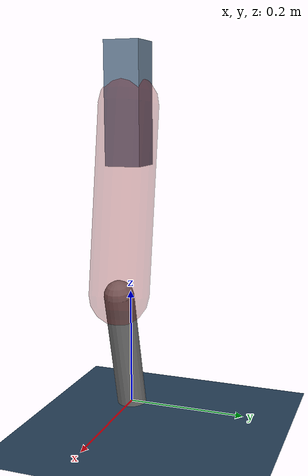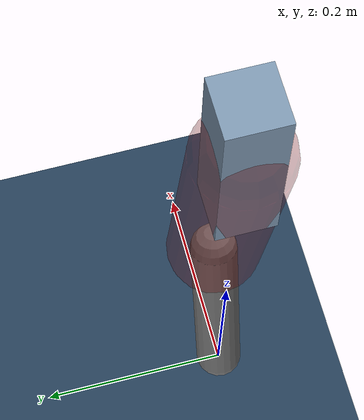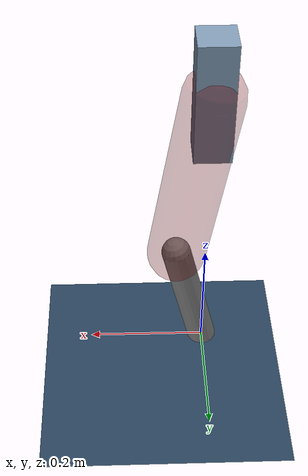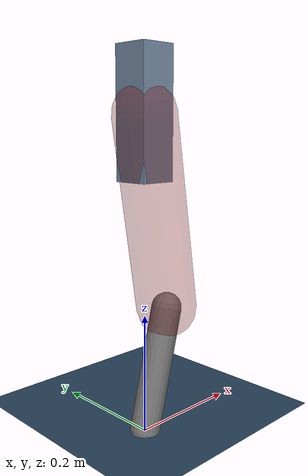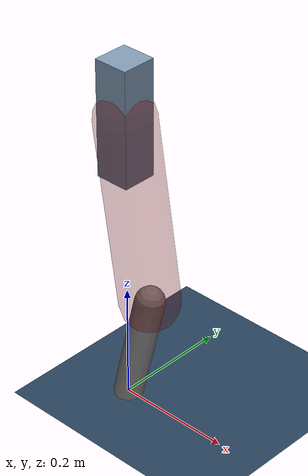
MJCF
<mujoco model="Hopper2D">
	<compiler inertiafromgeom="true" angle="radian" />
	<option timestep="0.001" integrator="implicit" cone="elliptic" solver="Newton" tolerance="1e-10" />

	<default>
		<geom contype="1" conaffinity="1" condim="3" friction="2 0.005 0.0001" solref="0.005 1" />
		<joint limited="true" damping="0.1" />
	</default>

	<asset>
		<texture name="skybox" type="skybox" builtin="gradient" rgb1=".4 .6 .8" rgb2="0 0 0" width="800" height="800" />
		<texture name="grid" type="2d" builtin="checker" rgb1=".1 .2 .3" rgb2=".2 .3 .4" width="300" height="300" mark="edge" markrgb=".2 .3 .4" />
		<material name="ground" texture="grid" texrepeat="1 1" texuniform="true" reflectance="0.1" />
		<material name="leg" rgba="0.5 0.6 0.7 1" />
	</asset>

	<worldbody>

		<geom name="floor" type="plane" size="5 5 0.25" material="ground" />

		<light directional="false" diffuse="0.8 0.8 0.8" specular="0.3 0.3 0.3" pos="0 0 2" dir="0 0 -1" />
		<light mode="targetbodycom" target="base" directional="false" diffuse="0.8 0.8 0.8" specular="0.3 0.3 0.3" pos="0 0 2" dir="0 0 -1" />

		<camera name="fixed" pos="0 -2 1" xyaxes="1 0 0 0 0 1" />
		<camera name="tracking" mode="trackcom" pos="0 -3 1" />

		<body name="root" pos="0 0 0.5146249471582038">
			<joint name="slide_x" type="slide" axis="1 0 0" range="-100 100" />
			<joint name="slide_z" type="slide" axis="0 0 1" range="0 10" />

			<body name="base" pos="0 0 0">
				<geom name="torso" type="box" size="0.03 0.03 0.1" mass="2.754" material="leg" />

				<body name="link1" pos="0 0 0" euler="0 1.4109518598289148 0">
					<joint type="hinge" axis="0 -1 0" pos="0 0 0" name="hinge1" limited="true" range="-3.14 3.14" stiffness="0" damping="0.1" />
					<geom name="thigh" type="capsule" fromto="0 0 0 0.3137753600314712 0 0" size="0.05" rgba="0.5 0 0 0.3" mass="1.0261934720849721" />

					<body name="link2" pos="0.3137753600314712 0 0" euler="0 0.39897762854847196 0">
						<joint type="hinge" axis="0 -1 0" pos="0 0 0" name="hinge2" limited="true" range="-3.14 3.14" stiffness="0" damping="0.1" />
						<geom name="shank" type="capsule" fromto="0 0 0 0.21084958712673257 0 0" size="0.025" mass="0.4099796697013861" />

					</body>
				</body>
			</body>
		</body>
	</worldbody>

	<actuator>
		<motor name="torque1" joint="hinge1" ctrlrange="-96.67750580091152 96.67750580091152" ctrllimited="true" gear="1" />
		<motor name="torque2" joint="hinge2" ctrlrange="-130.0237086135011 130.0237086135011" ctrllimited="true" gear="1" />
	</actuator>
</mujoco>
